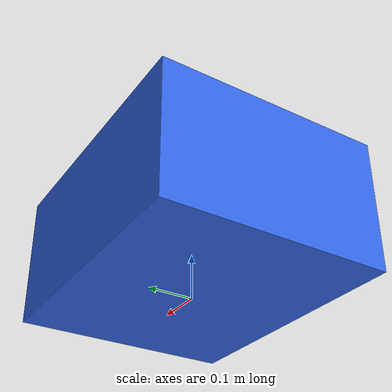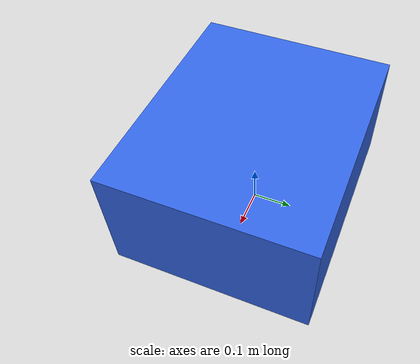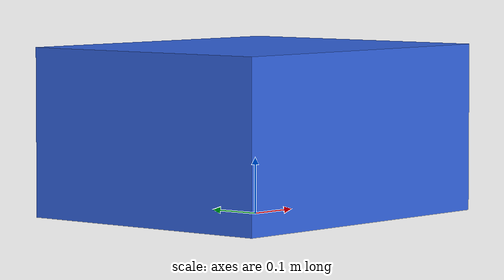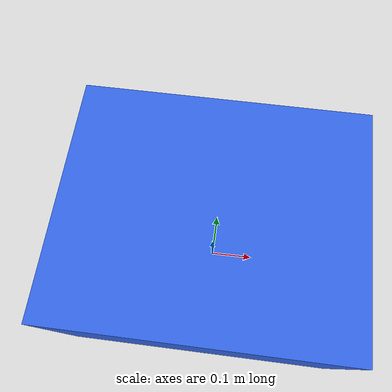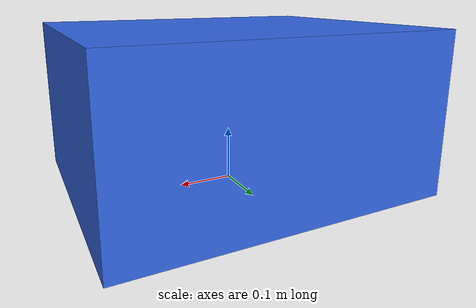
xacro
<?xml version="1.0"?>
<robot xmlns:xacro="http://www.ros.org/wiki/xacro" name="ylhb_chassis">

  <!-- 按实际车量尺寸改 -->
  <xacro:property name="wheel_radius" value="0.15"/>
  <xacro:property name="base_length"  value="0.60"/>
  <xacro:property name="base_width"   value="0.50"/>
  <xacro:property name="base_height"  value="0.30"/>

  <!-- 里程计的 child frame：base_link 投影到地面 -->
  <link name="base_footprint"/>

  <link name="base_link">
    <visual>
      <geometry>
        <box size="${base_length} ${base_width} ${base_height}"/>
      </geometry>
      <material name="blue">
        <color rgba="0.2 0.4 0.9 1.0"/>
      </material>
    </visual>
  </link>

  <joint name="footprint_to_base" type="fixed">
    <parent link="base_footprint"/>
    <child link="base_link"/>
    <origin xyz="0 0 ${wheel_radius}" rpy="0 0 0"/>
  </joint>

  <!-- IMU：位置按实际安装量改 -->
  <link name="imu_link"/>
  <joint name="base_to_imu" type="fixed">
    <parent link="base_link"/>
    <child link="imu_link"/>
    <origin xyz="-0.28 0 0.107" rpy="0 0 0"/>
  </joint>

  <!-- 雷达：扫描 0° 即车头正方向（物理安装时雷达 0° 角/壳体背面朝车头） -->
  <link name="laser_link"/>
  <joint name="base_to_laser" type="fixed">
    <parent link="base_link"/>
    <child link="laser_link"/>
    <origin xyz="-0.09 0 0.18" rpy="0 0 0"/>
  </joint>

</robot>
